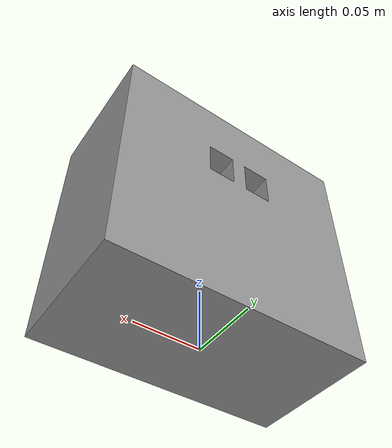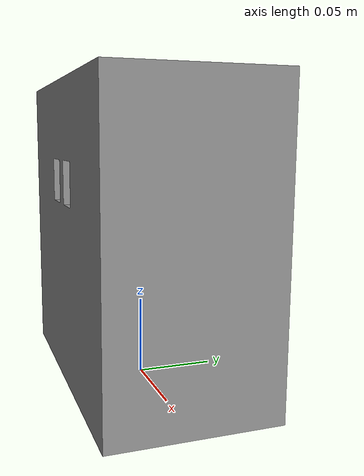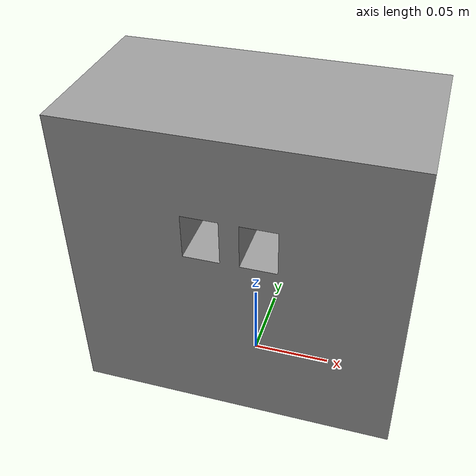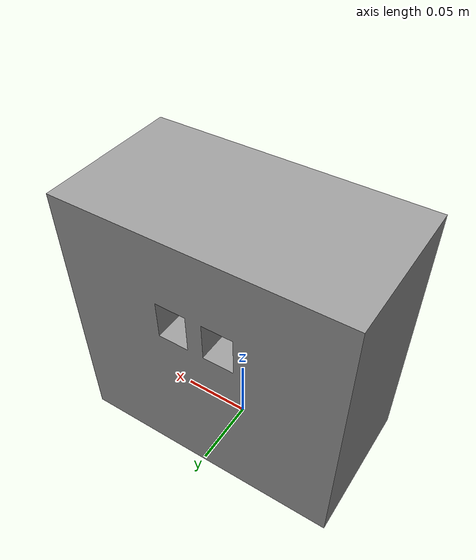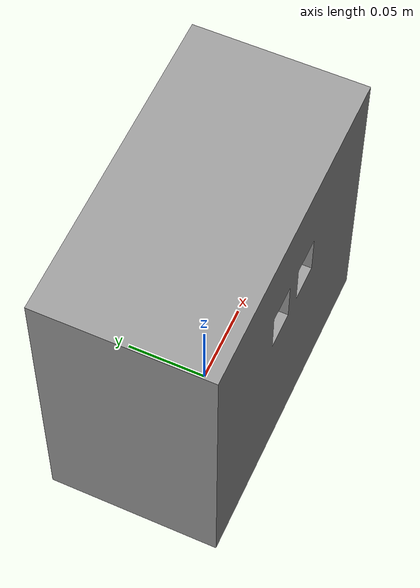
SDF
<?xml version='1.0'?>
<sdf version='1.7'>
  <model name='hole'>
    <link name='hole_main'>
      <inertial>
        <mass>100</mass>
        <inertia>
          <ixx>  4.0217091797e-03 </ixx>
          <ixy>  0                </ixy>
          <ixz>  1.8352021466e-06 </ixz>
          <iyy>  6.4318211758e-03 </iyy>
          <iyz>  0                </iyz>
          <izz>  4.2007287544e-03 </izz>
        </inertia>
        <pose> -4.5000000000e-05 0 9.4870960000e-02 0 0 0 </pose>
      </inertial>
      <pose>-0 -0 -0 0 -0 0</pose>
      <gravity>1</gravity>
      <self_collide>0</self_collide>
      <kinematic>0</kinematic>
      <enable_wind>0</enable_wind>
      <visual name='visual'>
        <pose>0 0 0 0 -0 0</pose>
        <geometry>
          <mesh>
            <uri>/monoclone/monoclone_ros/assets/peg_ins/hole/hole.dae</uri>
            <scale>1 1 1</scale>
          </mesh>
        </geometry>
        <material>
          <lighting>1</lighting>
          <script>
            <uri>file://media/materials/scripts/gazebo.material</uri>
            <name>Gazebo/Grey</name>
          </script>
          <shader type='pixel'/>
          <emissive>0 0 0 1</emissive>
        </material>
        <transparency>0</transparency>
        <cast_shadows>1</cast_shadows>
      </visual>
      <collision name='collision'>
        <laser_retro>0</laser_retro>
        <max_contacts>10</max_contacts>
        <pose>0 0 0 0 -0 0</pose>
        <geometry>
          <mesh>
            <uri>/monoclone/monoclone_ros/assets/peg_ins/hole/hole.dae</uri>
            <scale>1 1 1</scale>
          </mesh>
        </geometry>
        <surface>
          <friction>
            <ode>
              <mu>1</mu>
              <mu2>1</mu2>
              <fdir1>0 0 0</fdir1>
              <slip1>0</slip1>
              <slip2>0</slip2>
            </ode>
            <torsional>
              <coefficient>1</coefficient>
              <patch_radius>0</patch_radius>
              <surface_radius>0</surface_radius>
              <use_patch_radius>1</use_patch_radius>
              <ode>
                <slip>0</slip>
              </ode>
            </torsional>
          </friction>
          <bounce>
            <restitution_coefficient>0</restitution_coefficient>
            <threshold>1e+06</threshold>
          </bounce>
          <contact>
            <collide_without_contact>0</collide_without_contact>
            <collide_without_contact_bitmask>1</collide_without_contact_bitmask>
            <collide_bitmask>1</collide_bitmask>
            <ode>
              <soft_cfm>0</soft_cfm>
              <soft_erp>0.2</soft_erp>
              <kp>1e+13</kp>
              <kd>1</kd>
              <max_vel>0.01</max_vel>
              <min_depth>0</min_depth>
            </ode>
            <bullet>
              <split_impulse>1</split_impulse>
              <split_impulse_penetration_threshold>-0.01</split_impulse_penetration_threshold>
              <soft_cfm>0</soft_cfm>
              <soft_erp>0.2</soft_erp>
              <kp>1e+13</kp>
              <kd>1</kd>
            </bullet>
          </contact>
        </surface>
      </collision>
    </link>
    <allow_auto_disable>0</allow_auto_disable>
    <!-- make this model static so it's free from physics law -->
    <static>true</static>
  </model>
</sdf>
